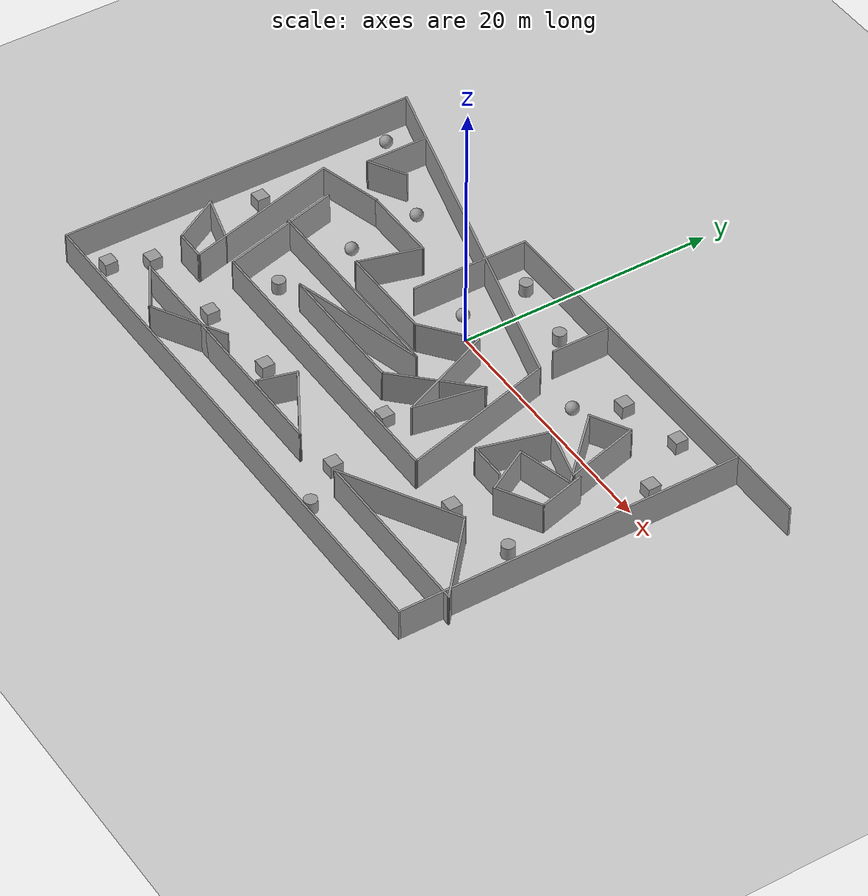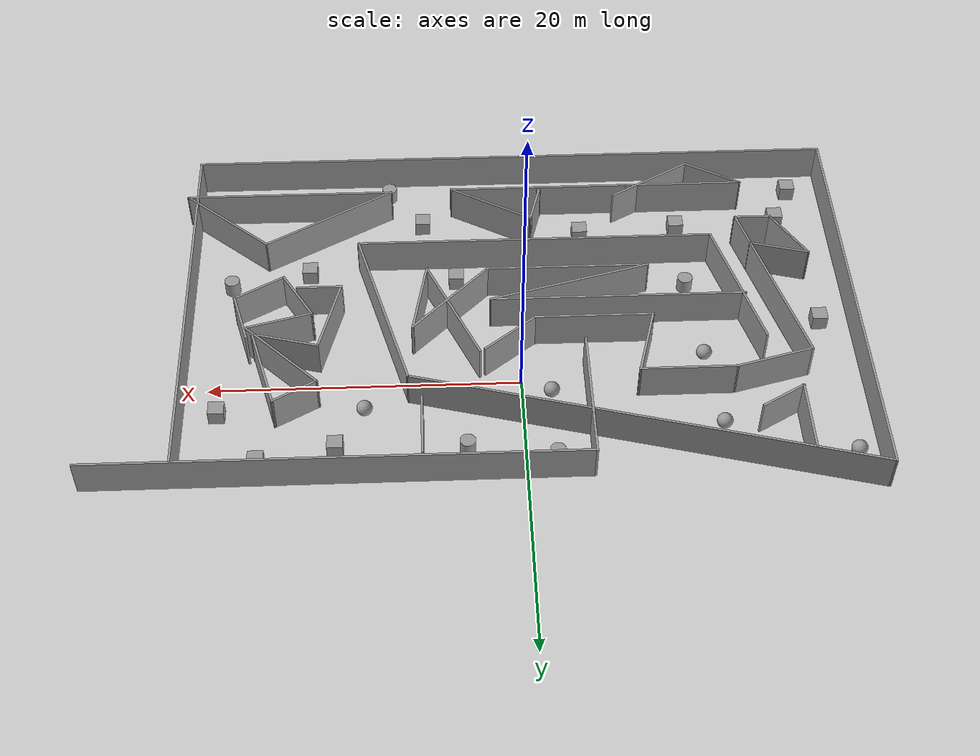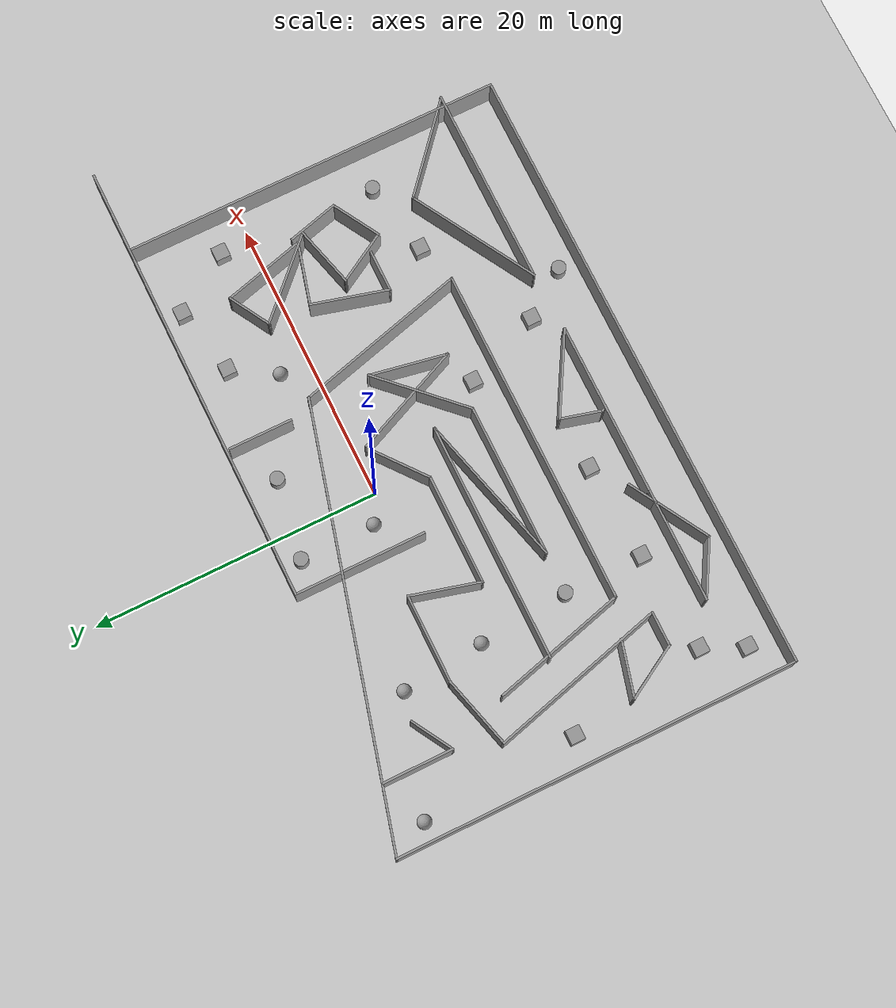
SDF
<sdf version="1.7">
 <world name="default">
  <light name="sun" type="directional">
   <pose>0 0 10 0 -0 0</pose>
   <diffuse>0.8 0.8 0.8 1</diffuse>
   <specular>0.2 0.2 0.2 1</specular>
   <attenuation>
    <range>1000</range>
    <constant>0.9</constant>
    <linear>0.01</linear>
    <quadratic>0.001</quadratic>
   </attenuation>
   <direction>-0.5 0.1 -0.9</direction>
   <spot><inner_angle>0</inner_angle><outer_angle>0</outer_angle><falloff>0</falloff></spot>
  </light>
  <model name="ground_plane">
   <static>1</static>
   <link name="link">
    <collision name="collision">
     <geometry><plane><normal>0 0 1</normal><size>100 100</size></plane></geometry>
     <surface><friction><ode><mu>100</mu><mu2>50</mu2></ode></friction></surface>
    </collision>
    <visual name="visual">
     <cast_shadows>0</cast_shadows>
     <geometry><plane><normal>0 0 1</normal><size>100 100</size></plane></geometry>
     <material>
      <script><uri>file://media/materials/scripts/gazebo.material</uri><name>Gazebo/Grey</name></script>
     </material>
    </visual>
   </link>
  </model>
  <gravity>0 0 -9.8</gravity>
  <magnetic_field>6e-06 2.3e-05 -4.2e-05</magnetic_field>
  <atmosphere type="adiabatic"/>
  <physics type="ode">
   <max_step_size>0.001</max_step_size>
   <real_time_factor>1</real_time_factor>
   <real_time_update_rate>1000</real_time_update_rate>
  </physics>
  <scene><ambient>0.4 0.4 0.4 1</ambient><background>0.7 0.7 0.7 1</background><shadows>1</shadows></scene>
  <spherical_coordinates>
   <surface_model>EARTH_WGS84</surface_model>
   <latitude_deg>0</latitude_deg>
   <longitude_deg>0</longitude_deg>
   <elevation>0</elevation>
   <heading_deg>0</heading_deg>
  </spherical_coordinates>
  <model name="Untitled">
   <pose>2.66185 -4.96593 0 0 -0 0</pose>
   <link name="Wall_0">
    <collision name="Wall_0_Collision">
     <geometry><box><size>9.25 0.15 2.5</size></box></geometry>
     <pose>0 0 1.25 0 -0 0</pose>
    </collision>
    <visual name="Wall_0_Visual">
     <pose>0 0 1.25 0 -0 0</pose>
     <geometry><box><size>9.25 0.15 2.5</size></box></geometry>
     <material>
      <script><uri>file://media/materials/scripts/gazebo.material</uri><name>Gazebo/Grey</name></script>
      <ambient>1 1 1 1</ambient>
     </material>
     <meta><layer>0</layer></meta>
    </visual>
    <pose>-6.79185 8.00593 0 0 -0 1.5708</pose>
   </link>
   <link name="Wall_1">
    <collision name="Wall_1_Collision">
     <geometry><box><size>31.5 0.15 2.5</size></box></geometry>
     <pose>0 0 1.25 0 -0 0</pose>
    </collision>
    <visual name="Wall_1_Visual">
     <pose>0 0 1.25 0 -0 0</pose>
     <geometry><box><size>31.5 0.15 2.5</size></box></geometry>
     <material>
      <script><uri>file://media/materials/scripts/gazebo.material</uri><name>Gazebo/Grey</name></script>
      <ambient>1 1 1 1</ambient>
     </material>
     <meta><layer>0</layer></meta>
    </visual>
    <pose>8.88315 12.5559 0 0 -0 0</pose>
   </link>
   <link name="Wall_12">
    <collision name="Wall_12_Collision">
     <geometry><box><size>16.75 0.15 2.5</size></box></geometry>
     <pose>0 0 1.25 0 -0 0</pose>
    </collision>
    <visual name="Wall_12_Visual">
     <pose>0 0 1.25 0 -0 0</pose>
     <geometry><box><size>16.75 0.15 2.5</size></box></geometry>
     <material>
      <script><uri>file://media/materials/scripts/gazebo.material</uri><name>Gazebo/Grey</name></script>
      <ambient>1 1 1 1</ambient>
     </material>
     <meta><layer>0</layer></meta>
    </visual>
    <pose>-9.19887 -0.184792 0 0 -0 0</pose>
   </link>
   <link name="Wall_13">
    <collision name="Wall_13_Collision">
     <geometry><box><size>11 0.15 2.5</size></box></geometry>
     <pose>0 0 1.25 0 -0 0</pose>
    </collision>
    <visual name="Wall_13_Visual">
     <pose>0 0 1.25 0 -0 0</pose>
     <geometry><box><size>11 0.15 2.5</size></box></geometry>
     <material>
      <script><uri>file://media/materials/scripts/gazebo.material</uri><name>Gazebo/Grey</name></script>
      <ambient>1 1 1 1</ambient>
     </material>
     <meta><layer>0</layer></meta>
    </visual>
    <pose>-6.13901 -1.58889 0 0 -0 -2.87979</pose>
   </link>
   <link name="Wall_14">
    <collision name="Wall_14_Collision">
     <geometry><box><size>10.75 0.15 2.5</size></box></geometry>
     <pose>0 0 1.25 0 -0 0</pose>
    </collision>
    <visual name="Wall_14_Visual">
     <pose>0 0 1.25 0 -0 0</pose>
     <geometry><box><size>10.75 0.15 2.5</size></box></geometry>
     <material>
      <script><uri>file://media/materials/scripts/gazebo.material</uri><name>Gazebo/Grey</name></script>
      <ambient>1 1 1 1</ambient>
     </material>
     <meta><layer>0</layer></meta>
    </visual>
    <pose>-6.07916 -2.99298 0 0 -0 0</pose>
   </link>
   <link name="Wall_15">
    <collision name="Wall_15_Collision">
     <geometry><box><size>7.2412 0.15 2.5</size></box></geometry>
     <pose>0 0 1.25 0 -0 0</pose>
    </collision>
    <visual name="Wall_15_Visual">
     <pose>0 0 1.25 0 -0 0</pose>
     <geometry><box><size>7.2412 0.15 2.5</size></box></geometry>
     <material>
      <script><uri>file://media/materials/scripts/gazebo.material</uri><name>Gazebo/Grey</name></script>
      <ambient>1 1 1 1</ambient>
     </material>
     <meta><layer>0</layer></meta>
    </visual>
    <pose>1.70049 -0.458696 0 0 -0 0.796293</pose>
   </link>
   <link name="Wall_16">
    <collision name="Wall_16_Collision">
     <geometry><box><size>5.47568 0.15 2.5</size></box></geometry>
     <pose>0 0 1.25 0 -0 0</pose>
    </collision>
    <visual name="Wall_16_Visual">
     <pose>0 0 1.25 0 -0 0</pose>
     <geometry><box><size>5.47568 0.15 2.5</size></box></geometry>
     <material>
      <script><uri>file://media/materials/scripts/gazebo.material</uri><name>Gazebo/Grey</name></script>
      <ambient>1 1 1 1</ambient>
     </material>
     <meta><layer>0</layer></meta>
    </visual>
    <pose>3.70028 -0.482131 0 0 -0 -1.75199</pose>
   </link>
   <link name="Wall_17">
    <collision name="Wall_17_Collision">
     <geometry><box><size>8.30055 0.15 2.5</size></box></geometry>
     <pose>0 0 1.25 0 -0 0</pose>
    </collision>
    <visual name="Wall_17_Visual">
     <pose>0 0 1.25 0 -0 0</pose>
     <geometry><box><size>8.30055 0.15 2.5</size></box></geometry>
     <material>
      <script><uri>file://media/materials/scripts/gazebo.material</uri><name>Gazebo/Grey</name></script>
      <ambient>1 1 1 1</ambient>
     </material>
     <meta><layer>0</layer></meta>
    </visual>
    <pose>1.59404 0.573772 0 0 -0 1.98131</pose>
   </link>
   <link name="Wall_18">
    <collision name="Wall_18_Collision">
     <geometry><box><size>4.35206 0.15 2.5</size></box></geometry>
     <pose>0 0 1.25 0 -0 0</pose>
    </collision>
    <visual name="Wall_18_Visual">
     <pose>0 0 1.25 0 -0 0</pose>
     <geometry><box><size>4.35206 0.15 2.5</size></box></geometry>
     <material>
      <script><uri>file://media/materials/scripts/gazebo.material</uri><name>Gazebo/Grey</name></script>
      <ambient>1 1 1 1</ambient>
     </material>
     <meta><layer>0</layer></meta>
    </visual>
    <pose>-2.04364 2.81524 0 0 -0 -2.468</pose>
   </link>
   <link name="Wall_19">
    <collision name="Wall_19_Collision">
     <geometry><box><size>7.75 0.15 2.5</size></box></geometry>
     <pose>0 0 1.25 0 -0 0</pose>
    </collision>
    <visual name="Wall_19_Visual">
     <pose>0 0 1.25 0 -0 0</pose>
     <geometry><box><size>7.75 0.15 2.5</size></box></geometry>
     <material>
      <script><uri>file://media/materials/scripts/gazebo.material</uri><name>Gazebo/Grey</name></script>
      <ambient>1 1 1 1</ambient>
     </material>
     <meta><layer>0</layer></meta>
    </visual>
    <pose>-7.48576 1.50462 0 0 -0 3.14159</pose>
   </link>
   <link name="Wall_20">
    <collision name="Wall_20_Collision">
     <geometry><box><size>5 0.15 2.5</size></box></geometry>
     <pose>0 0 1.25 0 -0 0</pose>
    </collision>
    <visual name="Wall_20_Visual">
     <pose>0 0 1.25 0 -0 0</pose>
     <geometry><box><size>5 0.15 2.5</size></box></geometry>
     <material>
      <script><uri>file://media/materials/scripts/gazebo.material</uri><name>Gazebo/Grey</name></script>
      <ambient>1 1 1 1</ambient>
     </material>
     <meta><layer>0</layer></meta>
    </visual>
    <pose>-10.6581 3.84699 0 0 -0 1.309</pose>
   </link>
   <link name="Wall_21">
    <collision name="Wall_21_Collision">
     <geometry><box><size>6.25 0.15 2.5</size></box></geometry>
     <pose>0 0 1.25 0 -0 0</pose>
    </collision>
    <visual name="Wall_21_Visual">
     <pose>0 0 1.25 0 -0 0</pose>
     <geometry><box><size>6.25 0.15 2.5</size></box></geometry>
     <material>
      <script><uri>file://media/materials/scripts/gazebo.material</uri><name>Gazebo/Grey</name></script>
      <ambient>1 1 1 1</ambient>
     </material>
     <meta><layer>0</layer></meta>
    </visual>
    <pose>-13.0805 6.18936 0 0 -0 3.14159</pose>
   </link>
   <link name="Wall_22">
    <collision name="Wall_22_Collision">
     <geometry><box><size>5.25 0.15 2.5</size></box></geometry>
     <pose>0 0 1.25 0 -0 0</pose>
    </collision>
    <visual name="Wall_22_Visual">
     <pose>0 0 1.25 0 -0 0</pose>
     <geometry><box><size>5.25 0.15 2.5</size></box></geometry>
     <material>
      <script><uri>file://media/materials/scripts/gazebo.material</uri><name>Gazebo/Grey</name></script>
      <ambient>1 1 1 1</ambient>
     </material>
     <meta><layer>0</layer></meta>
    </visual>
    <pose>-18.5936 5.52937 0 0 -0 -2.87979</pose>
   </link>
   <link name="Wall_23">
    <collision name="Wall_23_Collision">
     <geometry><box><size>12.75 0.15 2.5</size></box></geometry>
     <pose>0 0 1.25 0 -0 0</pose>
    </collision>
    <visual name="Wall_23_Visual">
     <pose>0 0 1.25 0 -0 0</pose>
     <geometry><box><size>12.75 0.15 2.5</size></box></geometry>
     <material>
      <script><uri>file://media/materials/scripts/gazebo.material</uri><name>Gazebo/Grey</name></script>
      <ambient>1 1 1 1</ambient>
     </material>
     <meta><layer>0</layer></meta>
    </visual>
    <pose>-19.4262 -1.21595 0 0 -0 -1.309</pose>
   </link>
   <link name="Wall_24">
    <collision name="Wall_24_Collision">
     <geometry><box><size>2.5 0.15 2.5</size></box></geometry>
     <pose>0 0 1.25 0 -0 0</pose>
    </collision>
    <visual name="Wall_24_Visual">
     <pose>0 0 1.25 0 -0 0</pose>
     <geometry><box><size>2.5 0.15 2.5</size></box></geometry>
     <material>
      <script><uri>file://media/materials/scripts/gazebo.material</uri><name>Gazebo/Grey</name></script>
      <ambient>1 1 1 1</ambient>
     </material>
     <meta><layer>0</layer></meta>
    </visual>
    <pose>-18.9706 -7.30129 0 0 -0 3.14159</pose>
   </link>
   <link name="Wall_25">
    <collision name="Wall_25_Collision">
     <geometry><box><size>4.25 0.15 2.5</size></box></geometry>
     <pose>0 0 1.25 0 -0 0</pose>
    </collision>
    <visual name="Wall_25_Visual">
     <pose>0 0 1.25 0 -0 0</pose>
     <geometry><box><size>4.25 0.15 2.5</size></box></geometry>
     <material>
      <script><uri>file://media/materials/scripts/gazebo.material</uri><name>Gazebo/Grey</name></script>
      <ambient>1 1 1 1</ambient>
     </material>
     <meta><layer>0</layer></meta>
    </visual>
    <pose>-21.1706 -5.52593 0 0 -0 2.0944</pose>
   </link>
   <link name="Wall_26">
    <collision name="Wall_26_Collision">
     <geometry><box><size>4 0.15 2.5</size></box></geometry>
     <pose>0 0 1.25 0 -0 0</pose>
    </collision>
    <visual name="Wall_26_Visual">
     <pose>0 0 1.25 0 -0 0</pose>
     <geometry><box><size>4 0.15 2.5</size></box></geometry>
     <material>
      <script><uri>file://media/materials/scripts/gazebo.material</uri><name>Gazebo/Grey</name></script>
      <ambient>1 1 1 1</ambient>
     </material>
     <meta><layer>0</layer></meta>
    </visual>
    <pose>-20.3362 -4.24881 0 0 -0 -0.261799</pose>
   </link>
   <link name="Wall_28">
    <collision name="Wall_28_Collision">
     <geometry><box><size>6.25 0.15 2.5</size></box></geometry>
     <pose>0 0 1.25 0 -0 0</pose>
    </collision>
    <visual name="Wall_28_Visual">
     <pose>0 0 1.25 0 -0 0</pose>
     <geometry><box><size>6.25 0.15 2.5</size></box></geometry>
     <material>
      <script><uri>file://media/materials/scripts/gazebo.material</uri><name>Gazebo/Grey</name></script>
      <ambient>1 1 1 1</ambient>
     </material>
     <meta><layer>0</layer></meta>
    </visual>
    <pose>-12.3713 -11.322 0 0 -0 -2.61799</pose>
   </link>
   <link name="Wall_29">
    <collision name="Wall_29_Collision">
     <geometry><box><size>4.25 0.15 2.5</size></box></geometry>
     <pose>0 0 1.25 0 -0 0</pose>
    </collision>
    <visual name="Wall_29_Visual">
     <pose>0 0 1.25 0 -0 0</pose>
     <geometry><box><size>4.25 0.15 2.5</size></box></geometry>
     <material>
      <script><uri>file://media/materials/scripts/gazebo.material</uri><name>Gazebo/Grey</name></script>
      <ambient>1 1 1 1</ambient>
     </material>
     <meta><layer>0</layer></meta>
    </visual>
    <pose>-16.788 -11.822 0 0 -0 2.61799</pose>
   </link>
   <link name="Wall_3">
    <collision name="Wall_3_Collision">
     <geometry><box><size>26.75 0.15 2.5</size></box></geometry>
     <pose>0 0 1.25 0 -0 0</pose>
    </collision>
    <visual name="Wall_3_Visual">
     <pose>0 0 1.25 0 -0 0</pose>
     <geometry><box><size>26.75 0.15 2.5</size></box></geometry>
     <material>
      <script><uri>file://media/materials/scripts/gazebo.material</uri><name>Gazebo/Grey</name></script>
      <ambient>1 1 1 1</ambient>
     </material>
     <meta><layer>0</layer></meta>
    </visual>
    <pose>18.8087 -0.758428 0 0 -0 -1.5708</pose>
   </link>
   <link name="Wall_30">
    <collision name="Wall_30_Collision">
     <geometry><box><size>8 0.15 2.5</size></box></geometry>
     <pose>0 0 1.25 0 -0 0</pose>
    </collision>
    <visual name="Wall_30_Visual">
     <pose>0 0 1.25 0 -0 0</pose>
     <geometry><box><size>8 0.15 2.5</size></box></geometry>
     <material>
      <script><uri>file://media/materials/scripts/gazebo.material</uri><name>Gazebo/Grey</name></script>
      <ambient>1 1 1 1</ambient>
     </material>
     <meta><layer>0</layer></meta>
    </visual>
    <pose>-14.6384 -10.797 0 0 -0 0</pose>
   </link>
   <link name="Wall_31">
    <collision name="Wall_31_Collision">
     <geometry><box><size>12.25 0.15 2.5</size></box></geometry>
     <pose>0 0 1.25 0 -0 0</pose>
    </collision>
    <visual name="Wall_31_Visual">
     <pose>0 0 1.25 0 -0 0</pose>
     <geometry><box><size>12.25 0.15 2.5</size></box></geometry>
     <material>
      <script><uri>file://media/materials/scripts/gazebo.material</uri><name>Gazebo/Grey</name></script>
      <ambient>1 1 1 1</ambient>
     </material>
     <meta><layer>0</layer></meta>
    </visual>
    <pose>-4.66338 -10.797 0 0 -0 0</pose>
   </link>
   <link name="Wall_32">
    <collision name="Wall_32_Collision">
     <geometry><box><size>6.25 0.15 2.5</size></box></geometry>
     <pose>0 0 1.25 0 -0 0</pose>
    </collision>
    <visual name="Wall_32_Visual">
     <pose>0 0 1.25 0 -0 0</pose>
     <geometry><box><size>6.25 0.15 2.5</size></box></geometry>
     <material>
      <script><uri>file://media/materials/scripts/gazebo.material</uri><name>Gazebo/Grey</name></script>
      <ambient>1 1 1 1</ambient>
     </material>
     <meta><layer>0</layer></meta>
    </visual>
    <pose>-1.25476 -9.27204 0 0 -0 2.61799</pose>
   </link>
   <link name="Wall_33">
    <collision name="Wall_33_Collision">
     <geometry><box><size>3 0.15 2.5</size></box></geometry>
     <pose>0 0 1.25 0 -0 0</pose>
    </collision>
    <visual name="Wall_33_Visual">
     <pose>0 0 1.25 0 -0 0</pose>
     <geometry><box><size>3 0.15 2.5</size></box></geometry>
     <material>
      <script><uri>file://media/materials/scripts/gazebo.material</uri><name>Gazebo/Grey</name></script>
      <ambient>1 1 1 1</ambient>
     </material>
     <meta><layer>0</layer></meta>
    </visual>
    <pose>-4.26495 -9.12348 0 0 -0 -1.8326</pose>
   </link>
   <link name="Wall_34">
    <collision name="Wall_34_Collision">
     <geometry><box><size>0.25 0.15 2.5</size></box></geometry>
     <pose>0 0 1.25 0 -0 0</pose>
    </collision>
    <visual name="Wall_34_Visual">
     <pose>0 0 1.25 0 -0 0</pose>
     <geometry><box><size>0.25 0.15 2.5</size></box></geometry>
     <material>
      <script><uri>file://media/materials/scripts/gazebo.material</uri><name>Gazebo/Grey</name></script>
      <ambient>1 1 1 1</ambient>
     </material>
     <meta><layer>0</layer></meta>
    </visual>
    <pose>-4.60877 -10.5432 0 0 -0 -1.0472</pose>
   </link>
   <link name="Wall_36">
    <collision name="Wall_36_Collision">
     <geometry><box><size>3.75 0.15 2.5</size></box></geometry>
     <pose>0 0 1.25 0 -0 0</pose>
    </collision>
    <visual name="Wall_36_Visual">
     <pose>0 0 1.25 0 -0 0</pose>
     <geometry><box><size>3.75 0.15 2.5</size></box></geometry>
     <material>
      <script><uri>file://media/materials/scripts/gazebo.material</uri><name>Gazebo/Grey</name></script>
      <ambient>1 1 1 1</ambient>
     </material>
     <meta><layer>0</layer></meta>
    </visual>
    <pose>15.2539 0.853618 0 0 -0 -1.309</pose>
   </link>
   <link name="Wall_37">
    <collision name="Wall_37_Collision">
     <geometry><box><size>3.75 0.15 2.5</size></box></geometry>
     <pose>0 0 1.25 0 -0 0</pose>
    </collision>
    <visual name="Wall_37_Visual">
     <pose>0 0 1.25 0 -0 0</pose>
     <geometry><box><size>3.75 0.15 2.5</size></box></geometry>
     <material>
      <script><uri>file://media/materials/scripts/gazebo.material</uri><name>Gazebo/Grey</name></script>
      <ambient>1 1 1 1</ambient>
     </material>
     <meta><layer>0</layer></meta>
    </visual>
    <pose>14.161 -1.78505 0 0 -0 -2.61799</pose>
   </link>
   <link name="Wall_38">
    <collision name="Wall_38_Collision">
     <geometry><box><size>4 0.15 2.5</size></box></geometry>
     <pose>0 0 1.25 0 -0 0</pose>
    </collision>
    <visual name="Wall_38_Visual">
     <pose>0 0 1.25 0 -0 0</pose>
     <geometry><box><size>4 0.15 2.5</size></box></geometry>
     <material>
      <script><uri>file://media/materials/scripts/gazebo.material</uri><name>Gazebo/Grey</name></script>
      <ambient>1 1 1 1</ambient>
     </material>
     <meta><layer>0</layer></meta>
    </visual>
    <pose>11.6396 -1.01795 0 0 -0 2.0944</pose>
   </link>
   <link name="Wall_39">
    <collision name="Wall_39_Collision">
     <geometry><box><size>4.5 0.15 2.5</size></box></geometry>
     <pose>0 0 1.25 0 -0 0</pose>
    </collision>
    <visual name="Wall_39_Visual">
     <pose>0 0 1.25 0 -0 0</pose>
     <geometry><box><size>4.5 0.15 2.5</size></box></geometry>
     <material>
      <script><uri>file://media/materials/scripts/gazebo.material</uri><name>Gazebo/Grey</name></script>
      <ambient>1 1 1 1</ambient>
     </material>
     <meta><layer>0</layer></meta>
    </visual>
    <pose>12.778 1.21208 0 0 -0 0.261799</pose>
   </link>
   <link name="Wall_4">
    <collision name="Wall_4_Collision">
     <geometry><box><size>43.5 0.15 2.5</size></box></geometry>
     <pose>0 0 1.25 0 -0 0</pose>
    </collision>
    <visual name="Wall_4_Visual">
     <pose>0 0 1.25 0 -0 0</pose>
     <geometry><box><size>43.5 0.15 2.5</size></box></geometry>
     <material>
      <script><uri>file://media/materials/scripts/gazebo.material</uri><name>Gazebo/Grey</name></script>
      <ambient>1 1 1 1</ambient>
     </material>
     <meta><layer>0</layer></meta>
    </visual>
    <pose>-2.8663 -14.0584 0 0 -0 3.14159</pose>
   </link>
   <link name="Wall_40">
    <collision name="Wall_40_Collision">
     <geometry><box><size>6.75 0.15 2.5</size></box></geometry>
     <pose>0 0 1.25 0 -0 0</pose>
    </collision>
    <visual name="Wall_40_Visual">
     <pose>0 0 1.25 0 -0 0</pose>
     <geometry><box><size>6.75 0.15 2.5</size></box></geometry>
     <material>
      <script><uri>file://media/materials/scripts/gazebo.material</uri><name>Gazebo/Grey</name></script>
      <ambient>1 1 1 1</ambient>
     </material>
     <meta><layer>0</layer></meta>
    </visual>
    <pose>12.5454 4.10846 0 0 -0 2.35619</pose>
   </link>
   <link name="Wall_41">
    <collision name="Wall_41_Collision">
     <geometry><box><size>3.25 0.15 2.5</size></box></geometry>
     <pose>0 0 1.25 0 -0 0</pose>
    </collision>
    <visual name="Wall_41_Visual">
     <pose>0 0 1.25 0 -0 0</pose>
     <geometry><box><size>3.25 0.15 2.5</size></box></geometry>
     <material>
      <script><uri>file://media/materials/scripts/gazebo.material</uri><name>Gazebo/Grey</name></script>
      <ambient>1 1 1 1</ambient>
     </material>
     <meta><layer>0</layer></meta>
    </visual>
    <pose>11.5543 7.21692 0 0 -0 0.523599</pose>
   </link>
   <link name="Wall_42">
    <collision name="Wall_42_Collision">
     <geometry><box><size>6 0.15 2.5</size></box></geometry>
     <pose>0 0 1.25 0 -0 0</pose>
    </collision>
    <visual name="Wall_42_Visual">
     <pose>0 0 1.25 0 -0 0</pose>
     <geometry><box><size>6 0.15 2.5</size></box></geometry>
     <material>
      <script><uri>file://media/materials/scripts/gazebo.material</uri><name>Gazebo/Grey</name></script>
      <ambient>1 1 1 1</ambient>
     </material>
     <meta><layer>0</layer></meta>
    </visual>
    <pose>13.6537 5.16658 0 0 -0 -1.309</pose>
   </link>
   <link name="Wall_43">
    <collision name="Wall_43_Collision">
     <geometry><box><size>4.5 0.15 2.5</size></box></geometry>
     <pose>0 0 1.25 0 -0 0</pose>
    </collision>
    <visual name="Wall_43_Visual">
     <pose>0 0 1.25 0 -0 0</pose>
     <geometry><box><size>4.5 0.15 2.5</size></box></geometry>
     <material>
      <script><uri>file://media/materials/scripts/gazebo.material</uri><name>Gazebo/Grey</name></script>
      <ambient>1 1 1 1</ambient>
     </material>
     <meta><layer>0</layer></meta>
    </visual>
    <pose>12.3099 2.90418 0 0 -0 2.87979</pose>
   </link>
   <link name="Wall_44">
    <collision name="Wall_44_Collision">
     <geometry><box><size>5.5 0.15 2.5</size></box></geometry>
     <pose>0 0 1.25 0 -0 0</pose>
    </collision>
    <visual name="Wall_44_Visual">
     <pose>0 0 1.25 0 -0 0</pose>
     <geometry><box><size>5.5 0.15 2.5</size></box></geometry>
     <material>
      <script><uri>file://media/materials/scripts/gazebo.material</uri><name>Gazebo/Grey</name></script>
      <ambient>1 1 1 1</ambient>
     </material>
     <meta><layer>0</layer></meta>
    </visual>
    <pose>9.51663 0.883262 0 0 -0 -1.8326</pose>
   </link>
   <link name="Wall_45">
    <collision name="Wall_45_Collision">
     <geometry><box><size>3 0.15 2.5</size></box></geometry>
     <pose>0 0 1.25 0 -0 0</pose>
    </collision>
    <visual name="Wall_45_Visual">
     <pose>0 0 1.25 0 -0 0</pose>
     <geometry><box><size>3 0.15 2.5</size></box></geometry>
     <material>
      <script><uri>file://media/materials/scripts/gazebo.material</uri><name>Gazebo/Grey</name></script>
      <ambient>1 1 1 1</ambient>
     </material>
     <meta><layer>0</layer></meta>
    </visual>
    <pose>10.2493 -1.70059 0 0 -0 0</pose>
   </link>
   <link name="Wall_47">
    <collision name="Wall_47_Collision">
     <geometry><box><size>9.75 0.15 2.5</size></box></geometry>
     <pose>0 0 1.25 0 -0 0</pose>
    </collision>
    <visual name="Wall_47_Visual">
     <pose>0 0 1.25 0 -0 0</pose>
     <geometry><box><size>9.75 0.15 2.5</size></box></geometry>
     <material>
      <script><uri>file://media/materials/scripts/gazebo.material</uri><name>Gazebo/Grey</name></script>
      <ambient>1 1 1 1</ambient>
     </material>
     <meta><layer>0</layer></meta>
    </visual>
    <pose>9.73282 -8.25557 0 0 -0 -2.61799</pose>
   </link>
   <link name="Wall_48">
    <collision name="Wall_48_Collision">
     <geometry><box><size>14 0.15 2.5</size></box></geometry>
     <pose>0 0 1.25 0 -0 0</pose>
    </collision>
    <visual name="Wall_48_Visual">
     <pose>0 0 1.25 0 -0 0</pose>
     <geometry><box><size>14 0.15 2.5</size></box></geometry>
     <material>
      <script><uri>file://media/materials/scripts/gazebo.material</uri><name>Gazebo/Grey</name></script>
      <ambient>1 1 1 1</ambient>
     </material>
     <meta><layer>0</layer></meta>
    </visual>
    <pose>12.5009 -10.6556 0 0 -0 0</pose>
   </link>
   <link name="Wall_49">
    <collision name="Wall_49_Collision">
     <geometry><box><size>7.47728 0.15 2.5</size></box></geometry>
     <pose>0 0 1.25 0 -0 0</pose>
    </collision>
    <visual name="Wall_49_Visual">
     <pose>0 0 1.25 0 -0 0</pose>
     <geometry><box><size>7.47728 0.15 2.5</size></box></geometry>
     <material>
      <script><uri>file://media/materials/scripts/gazebo.material</uri><name>Gazebo/Grey</name></script>
      <ambient>1 1 1 1</ambient>
     </material>
     <meta><layer>0</layer></meta>
    </visual>
    <pose>16.6578 -8.25557 0 0 -0 2.4273</pose>
   </link>
   <link name="Wall_5">
    <collision name="Wall_5_Collision">
     <geometry><box><size>28.25 0.15 2.5</size></box></geometry>
     <pose>0 0 1.25 0 -0 0</pose>
    </collision>
    <visual name="Wall_5_Visual">
     <pose>0 0 1.25 0 -0 0</pose>
     <geometry><box><size>28.25 0.15 2.5</size></box></geometry>
     <material>
      <script><uri>file://media/materials/scripts/gazebo.material</uri><name>Gazebo/Grey</name></script>
      <ambient>1 1 1 1</ambient>
     </material>
     <meta><layer>0</layer></meta>
    </visual>
    <pose>-24.5413 -0.008428 0 0 -0 1.5708</pose>
   </link>
   <link name="Wall_51">
    <collision name="Wall_51_Collision">
     <geometry><box><size>5 0.15 2.5</size></box></geometry>
     <pose>0 0 1.25 0 -0 0</pose>
    </collision>
    <visual name="Wall_51_Visual">
     <pose>0 0 1.25 0 -0 0</pose>
     <geometry><box><size>5 0.15 2.5</size></box></geometry>
     <material>
      <script><uri>file://media/materials/scripts/gazebo.material</uri><name>Gazebo/Grey</name></script>
      <ambient>1 1 1 1</ambient>
     </material>
     <meta><layer>0</layer></meta>
    </visual>
    <pose>-19.9848 10.3411 0 0 -0 -1.5708</pose>
   </link>
   <link name="Wall_52">
    <collision name="Wall_52_Collision">
     <geometry><box><size>3.25 0.15 2.5</size></box></geometry>
     <pose>0 0 1.25 0 -0 0</pose>
    </collision>
    <visual name="Wall_52_Visual">
     <pose>0 0 1.25 0 -0 0</pose>
     <geometry><box><size>3.25 0.15 2.5</size></box></geometry>
     <material>
      <script><uri>file://media/materials/scripts/gazebo.material</uri><name>Gazebo/Grey</name></script>
      <ambient>1 1 1 1</ambient>
     </material>
     <meta><layer>0</layer></meta>
    </visual>
    <pose>-18.6425 8.69109 0 0 -0 0.523599</pose>
   </link>
   <link name="Wall_54">
    <collision name="Wall_54_Collision">
     <geometry><box><size>4.5 0.15 2.5</size></box></geometry>
     <pose>0 0 1.25 0 -0 0</pose>
    </collision>
    <visual name="Wall_54_Visual">
     <pose>0 0 1.25 0 -0 0</pose>
     <geometry><box><size>4.5 0.15 2.5</size></box></geometry>
     <material>
      <script><uri>file://media/materials/scripts/gazebo.material</uri><name>Gazebo/Grey</name></script>
      <ambient>1 1 1 1</ambient>
     </material>
     <meta><layer>0</layer></meta>
    </visual>
    <pose>3.68994 10.1232 0 0 -0 -1.5708</pose>
   </link>
   <link name="Wall_6">
    <collision name="Wall_6_Collision">
     <geometry><box><size>30.25 0.15 2.5</size></box></geometry>
     <pose>0 0 1.25 0 -0 0</pose>
    </collision>
    <visual name="Wall_6_Visual">
     <pose>0 0 1.25 0 -0 0</pose>
     <geometry><box><size>30.25 0.15 2.5</size></box></geometry>
     <material>
      <script><uri>file://media/materials/scripts/gazebo.material</uri><name>Gazebo/Grey</name></script>
      <ambient>1 1 1 1</ambient>
     </material>
     <meta><layer>0</layer></meta>
    </visual>
    <pose>-10.0041 10.1463 0 0 -0 -0.261799</pose>
   </link>
   <link name="Wall_7">
    <collision name="Wall_7_Collision">
     <geometry><box><size>12.5 0.15 2.5</size></box></geometry>
     <pose>0 0 1.25 0 -0 0</pose>
    </collision>
    <visual name="Wall_7_Visual">
     <pose>0 0 1.25 0 -0 0</pose>
     <geometry><box><size>12.5 0.15 2.5</size></box></geometry>
     <material>
      <script><uri>file://media/materials/scripts/gazebo.material</uri><name>Gazebo/Grey</name></script>
      <ambient>1 1 1 1</ambient>
     </material>
     <meta><layer>0</layer></meta>
    </visual>
    <pose>6.13128 0.286527 0 0 -0 -1.309</pose>
   </link>
   <link name="Wall_8">
    <collision name="Wall_8_Collision">
     <geometry><box><size>23.75 0.15 2.5</size></box></geometry>
     <pose>0 0 1.25 0 -0 0</pose>
    </collision>
    <visual name="Wall_8_Visual">
     <pose>0 0 1.25 0 -0 0</pose>
     <geometry><box><size>23.75 0.15 2.5</size></box></geometry>
     <material>
      <script><uri>file://media/materials/scripts/gazebo.material</uri><name>Gazebo/Grey</name></script>
      <ambient>1 1 1 1</ambient>
     </material>
     <meta><layer>0</layer></meta>
    </visual>
    <pose>-4.07051 -5.67807 0 0 -0 3.14159</pose>
   </link>
   <link name="Wall_9">
    <collision name="Wall_9_Collision">
     <geometry><box><size>9.75 0.15 2.5</size></box></geometry>
     <pose>0 0 1.25 0 -0 0</pose>
    </collision>
    <visual name="Wall_9_Visual">
     <pose>0 0 1.25 0 -0 0</pose>
     <geometry><box><size>9.75 0.15 2.5</size></box></geometry>
     <material>
      <script><uri>file://media/materials/scripts/gazebo.material</uri><name>Gazebo/Grey</name></script>
      <ambient>1 1 1 1</ambient>
     </material>
     <meta><layer>0</layer></meta>
    </visual>
    <pose>-17.1128 -1.04162 0 0 -0 1.8326</pose>
   </link>
   <static>1</static>
  </model>
  <model name="unit_sphere">
   <pose>-20.4802 6.46056 0.5 0 -0 0</pose>
   <link name="link">
    <inertial>
     <mass>1</mass>
     <inertia><ixx>0.1</ixx><ixy>0</ixy><ixz>0</ixz><iyy>0.1</iyy><iyz>0</iyz><izz>0.1</izz></inertia>
    </inertial>
    <collision name="collision"><geometry><sphere><radius>0.5</radius></sphere></geometry></collision>
    <visual name="visual">
     <geometry><sphere><radius>0.5</radius></sphere></geometry>
     <material>
      <script><name>Gazebo/Grey</name><uri>file://media/materials/scripts/gazebo.material</uri></script>
     </material>
    </visual>
   </link>
  </model>
  <model name="unit_sphere_0">
   <pose>-12.498 3.98773 0.5 0 -0 0</pose>
   <link name="link">
    <inertial>
     <mass>1</mass>
     <inertia><ixx>0.1</ixx><ixy>0</ixy><ixz>0</ixz><iyy>0.1</iyy><iyz>0</iyz><izz>0.1</izz></inertia>
    </inertial>
    <collision name="collision"><geometry><sphere><radius>0.5</radius></sphere></geometry></collision>
    <visual name="visual">
     <geometry><sphere><radius>0.5</radius></sphere></geometry>
     <material>
      <script><name>Gazebo/Grey</name><uri>file://media/materials/scripts/gazebo.material</uri></script>
     </material>
    </visual>
   </link>
  </model>
  <model name="unit_sphere_1">
   <pose>-11.8971 -1.80778 0.5 0 -0 0</pose>
   <link name="link">
    <inertial>
     <mass>1</mass>
     <inertia><ixx>0.1</ixx><ixy>0</ixy><ixz>0</ixz><iyy>0.1</iyy><iyz>0</iyz><izz>0.1</izz></inertia>
    </inertial>
    <collision name="collision"><geometry><sphere><radius>0.5</radius></sphere></geometry></collision>
    <visual name="visual">
     <geometry><sphere><radius>0.5</radius></sphere></geometry>
     <material>
      <script><name>Gazebo/Grey</name><uri>file://media/materials/scripts/gazebo.material</uri></script>
     </material>
    </visual>
   </link>
  </model>
  <model name="unit_sphere_2">
   <pose>-1.86801 1.00739 0.5 0 -0 0</pose>
   <link name="link">
    <inertial>
     <mass>1</mass>
     <inertia><ixx>0.1</ixx><ixy>0</ixy><ixz>0</ixz><iyy>0.1</iyy><iyz>0</iyz><izz>0.1</izz></inertia>
    </inertial>
    <collision name="collision"><geometry><sphere><radius>0.5</radius></sphere></geometry></collision>
    <visual name="visual">
     <geometry><sphere><radius>0.5</radius></sphere></geometry>
     <material>
      <script><name>Gazebo/Grey</name><uri>file://media/materials/scripts/gazebo.material</uri></script>
     </material>
    </visual>
   </link>
  </model>
  <model name="unit_cylinder">
   <pose>-11.3675 -8.10558 0.499998 3e-06 -2e-06 0</pose>
   <link name="link">
    <inertial>
     <mass>1</mass>
     <inertia><ixx>0.145833</ixx><ixy>0</ixy><ixz>0</ixz><iyy>0.145833</iyy><iyz>0</iyz><izz>0.125</izz></inertia>
    </inertial>
    <collision name="collision">
     <geometry><cylinder><radius>0.5</radius><length>1</length></cylinder></geometry>
    </collision>
    <visual name="visual">
     <geometry><cylinder><radius>0.5</radius><length>1</length></cylinder></geometry>
     <material>
      <script><name>Gazebo/Grey</name><uri>file://media/materials/scripts/gazebo.material</uri></script>
     </material>
    </visual>
   </link>
  </model>
  <model name="unit_box">
   <pose>-19.5842 -17.0412 0.499995 -1e-05 -0 -0</pose>
   <link name="link">
    <inertial>
     <mass>1</mass>
     <inertia>
      <ixx>0.166667</ixx>
      <ixy>0</ixy>
      <ixz>0</ixz>
      <iyy>0.166667</iyy>
      <iyz>0</iyz>
      <izz>0.166667</izz>
     </inertia>
    </inertial>
    <collision name="collision"><geometry><box><size>1 1 1</size></box></geometry></collision>
    <visual name="visual">
     <geometry><box><size>1 1 1</size></box></geometry>
     <material>
      <script><name>Gazebo/Grey</name><uri>file://media/materials/scripts/gazebo.material</uri></script>
     </material>
    </visual>
   </link>
  </model>
  <model name="unit_box_0">
   <pose>-18.3062 -14.2074 0.499995 0 1e-05 0</pose>
   <link name="link">
    <inertial>
     <mass>1</mass>
     <inertia>
      <ixx>0.166667</ixx>
      <ixy>0</ixy>
      <ixz>0</ixz>
      <iyy>0.166667</iyy>
      <iyz>0</iyz>
      <izz>0.166667</izz>
     </inertia>
    </inertial>
    <collision name="collision"><geometry><box><size>1 1 1</size></box></geometry></collision>
    <visual name="visual">
     <geometry><box><size>1 1 1</size></box></geometry>
     <material>
      <script><name>Gazebo/Grey</name><uri>file://media/materials/scripts/gazebo.material</uri></script>
     </material>
    </visual>
   </link>
  </model>
  <model name="unit_box_1">
   <pose>-11.3347 -13.6592 0.499995 -1e-05 -0 -0</pose>
   <link name="link">
    <inertial>
     <mass>1</mass>
     <inertia>
      <ixx>0.166667</ixx>
      <ixy>0</ixy>
      <ixz>0</ixz>
      <iyy>0.166667</iyy>
      <iyz>0</iyz>
      <izz>0.166667</izz>
     </inertia>
    </inertial>
    <collision name="collision"><geometry><box><size>1 1 1</size></box></geometry></collision>
    <visual name="visual">
     <geometry><box><size>1 1 1</size></box></geometry>
     <material>
      <script><name>Gazebo/Grey</name><uri>file://media/materials/scripts/gazebo.material</uri></script>
     </material>
    </visual>
   </link>
  </model>
  <model name="unit_box_2">
   <pose>-4.65358 -13.2732 0.499995 0 1e-05 0</pose>
   <link name="link">
    <inertial>
     <mass>1</mass>
     <inertia>
      <ixx>0.166667</ixx>
      <ixy>0</ixy>
      <ixz>0</ixz>
      <iyy>0.166667</iyy>
      <iyz>0</iyz>
      <izz>0.166667</izz>
     </inertia>
    </inertial>
    <collision name="collision"><geometry><box><size>1 1 1</size></box></geometry></collision>
    <visual name="visual">
     <geometry><box><size>1 1 1</size></box></geometry>
     <material>
      <script><name>Gazebo/Grey</name><uri>file://media/materials/scripts/gazebo.material</uri></script>
     </material>
    </visual>
   </link>
  </model>
  <model name="unit_box_3">
   <pose>16.5804 6.20137 0.499995 -1e-05 -0 -0</pose>
   <link name="link">
    <inertial>
     <mass>1</mass>
     <inertia>
      <ixx>0.166667</ixx>
      <ixy>0</ixy>
      <ixz>0</ixz>
      <iyy>0.166667</iyy>
      <iyz>0</iyz>
      <izz>0.166667</izz>
     </inertia>
    </inertial>
    <collision name="collision"><geometry><box><size>1 1 1</size></box></geometry></collision>
    <visual name="visual">
     <geometry><box><size>1 1 1</size></box></geometry>
     <material>
      <script><name>Gazebo/Grey</name><uri>file://media/materials/scripts/gazebo.material</uri></script>
     </material>
    </visual>
   </link>
  </model>
  <model name="unit_box_4">
   <pose>11.7603 5.15633 0.499995 0 1e-05 0</pose>
   <link name="link">
    <inertial>
     <mass>1</mass>
     <inertia>
      <ixx>0.166667</ixx>
      <ixy>0</ixy>
      <ixz>0</ixz>
      <iyy>0.166667</iyy>
      <iyz>0</iyz>
      <izz>0.166667</izz>
     </inertia>
    </inertial>
    <collision name="collision"><geometry><box><size>1 1 1</size></box></geometry></collision>
    <visual name="visual">
     <geometry><box><size>1 1 1</size></box></geometry>
     <material>
      <script><name>Gazebo/Grey</name><uri>file://media/materials/scripts/gazebo.material</uri></script>
     </material>
    </visual>
   </link>
  </model>
  <model name="unit_box_5">
   <pose>6.10131 -14.4598 0.499995 -1e-05 -0 -0</pose>
   <link name="link">
    <inertial>
     <mass>1</mass>
     <inertia>
      <ixx>0.166667</ixx>
      <ixy>0</ixy>
      <ixz>0</ixz>
      <iyy>0.166667</iyy>
      <iyz>0</iyz>
      <izz>0.166667</izz>
     </inertia>
    </inertial>
    <collision name="collision"><geometry><box><size>1 1 1</size></box></geometry></collision>
    <visual name="visual">
     <geometry><box><size>1 1 1</size></box></geometry>
     <material>
      <script><name>Gazebo/Grey</name><uri>file://media/materials/scripts/gazebo.material</uri></script>
     </material>
    </visual>
   </link>
  </model>
  <model name="unit_box_6">
   <pose>13.721 -9.96871 0.499995 0 1e-05 0</pose>
   <link name="link">
    <inertial>
     <mass>1</mass>
     <inertia>
      <ixx>0.166667</ixx>
      <ixy>0</ixy>
      <ixz>0</ixz>
      <iyy>0.166667</iyy>
      <iyz>0</iyz>
      <izz>0.166667</izz>
     </inertia>
    </inertial>
    <collision name="collision"><geometry><box><size>1 1 1</size></box></geometry></collision>
    <visual name="visual">
     <geometry><box><size>1 1 1</size></box></geometry>
     <material>
      <script><name>Gazebo/Grey</name><uri>file://media/materials/scripts/gazebo.material</uri></script>
     </material>
    </visual>
   </link>
  </model>
  <model name="unit_box_7">
   <pose>3.92228 -9.0571 0.499995 -1e-05 -0 -0</pose>
   <link name="link">
    <inertial>
     <mass>1</mass>
     <inertia>
      <ixx>0.166667</ixx>
      <ixy>0</ixy>
      <ixz>0</ixz>
      <iyy>0.166667</iyy>
      <iyz>0</iyz>
      <izz>0.166667</izz>
     </inertia>
    </inertial>
    <collision name="collision"><geometry><box><size>1 1 1</size></box></geometry></collision>
    <visual name="visual">
     <geometry><box><size>1 1 1</size></box></geometry>
     <material>
      <script><name>Gazebo/Grey</name><uri>file://media/materials/scripts/gazebo.material</uri></script>
     </material>
    </visual>
   </link>
  </model>
  <model name="unit_box_8">
   <pose>-19.7992 -4.51636 0.499995 0 1e-05 0</pose>
   <link name="link">
    <inertial>
     <mass>1</mass>
     <inertia>
      <ixx>0.166667</ixx>
      <ixy>0</ixy>
      <ixz>0</ixz>
      <iyy>0.166667</iyy>
      <iyz>0</iyz>
      <izz>0.166667</izz>
     </inertia>
    </inertial>
    <collision name="collision"><geometry><box><size>1 1 1</size></box></geometry></collision>
    <visual name="visual">
     <geometry><box><size>1 1 1</size></box></geometry>
     <material>
      <script><name>Gazebo/Grey</name><uri>file://media/materials/scripts/gazebo.material</uri></script>
     </material>
    </visual>
   </link>
  </model>
  <model name="unit_cylinder_0">
   <pose>3.58463 5.36051 0.499998 3e-06 -4e-06 0</pose>
   <link name="link">
    <inertial>
     <mass>1</mass>
     <inertia><ixx>0.145833</ixx><ixy>0</ixy><ixz>0</ixz><iyy>0.145833</iyy><iyz>0</iyz><izz>0.125</izz></inertia>
    </inertial>
    <collision name="collision">
     <geometry><cylinder><radius>0.5</radius><length>1</length></cylinder></geometry>
    </collision>
    <visual name="visual">
     <geometry><cylinder><radius>0.5</radius><length>1</length></cylinder></geometry>
     <material>
      <script><name>Gazebo/Grey</name><uri>file://media/materials/scripts/gazebo.material</uri></script>
     </material>
    </visual>
   </link>
  </model>
  <model name="unit_cylinder_1">
   <pose>-1.91813 6.25217 0.499992 -3e-06 -4e-06 -0</pose>
   <link name="link">
    <inertial>
     <mass>1</mass>
     <inertia><ixx>0.145833</ixx><ixy>0</ixy><ixz>0</ixz><iyy>0.145833</iyy><iyz>0</iyz><izz>0.125</izz></inertia>
    </inertial>
    <collision name="collision">
     <geometry><cylinder><radius>0.5</radius><length>1</length></cylinder></geometry>
    </collision>
    <visual name="visual">
     <geometry><cylinder><radius>0.5</radius><length>1</length></cylinder></geometry>
     <material>
      <script><name>Gazebo/Grey</name><uri>file://media/materials/scripts/gazebo.material</uri></script>
     </material>
    </visual>
   </link>
  </model>
  <model name="unit_cylinder_2">
   <pose>8.37971 -17.6309 0.499993 -3e-06 -3e-06 0</pose>
   <link name="link">
    <inertial>
     <mass>1</mass>
     <inertia><ixx>0.145833</ixx><ixy>0</ixy><ixz>0</ixz><iyy>0.145833</iyy><iyz>0</iyz><izz>0.125</izz></inertia>
    </inertial>
    <collision name="collision">
     <geometry><cylinder><radius>0.5</radius><length>1</length></cylinder></geometry>
    </collision>
    <visual name="visual">
     <geometry><cylinder><radius>0.5</radius><length>1</length></cylinder></geometry>
     <material>
      <script><name>Gazebo/Grey</name><uri>file://media/materials/scripts/gazebo.material</uri></script>
     </material>
    </visual>
   </link>
  </model>
  <model name="unit_cylinder_3">
   <pose>18.8916 -8.93665 0.499997 3e-06 4e-06 -0</pose>
   <link name="link">
    <inertial>
     <mass>1</mass>
     <inertia><ixx>0.145833</ixx><ixy>0</ixy><ixz>0</ixz><iyy>0.145833</iyy><iyz>0</iyz><izz>0.125</izz></inertia>
    </inertial>
    <collision name="collision">
     <geometry><cylinder><radius>0.5</radius><length>1</length></cylinder></geometry>
    </collision>
    <visual name="visual">
     <geometry><cylinder><radius>0.5</radius><length>1</length></cylinder></geometry>
     <material>
      <script><name>Gazebo/Grey</name><uri>file://media/materials/scripts/gazebo.material</uri></script>
     </material>
    </visual>
   </link>
  </model>
  <model name="unit_box_9">
   <pose>19.2354 2.15184 0.499995 -1e-05 -0 0</pose>
   <link name="link">
    <inertial>
     <mass>1</mass>
     <inertia>
      <ixx>0.166667</ixx>
      <ixy>0</ixy>
      <ixz>0</ixz>
      <iyy>0.166667</iyy>
      <iyz>0</iyz>
      <izz>0.166667</izz>
     </inertia>
    </inertial>
    <collision name="collision"><geometry><box><size>1 1 1</size></box></geometry></collision>
    <visual name="visual">
     <geometry><box><size>1 1 1</size></box></geometry>
     <material>
      <script><name>Gazebo/Grey</name><uri>file://media/materials/scripts/gazebo.material</uri></script>
     </material>
    </visual>
   </link>
  </model>
  <model name="unit_sphere_3">
   <pose>9.97599 2.1264 0.5 0 -0 0</pose>
   <link name="link">
    <inertial>
     <mass>1</mass>
     <inertia><ixx>0.1</ixx><ixy>0</ixy><ixz>0</ixz><iyy>0.1</iyy><iyz>0</iyz><izz>0.1</izz></inertia>
    </inertial>
    <collision name="collision"><geometry><sphere><radius>0.5</radius></sphere></geometry></collision>
    <visual name="visual">
     <geometry><sphere><radius>0.5</radius></sphere></geometry>
     <material>
      <script><name>Gazebo/Grey</name><uri>file://media/materials/scripts/gazebo.material</uri></script>
     </material>
    </visual>
   </link>
  </model>
 </world>
</sdf>
